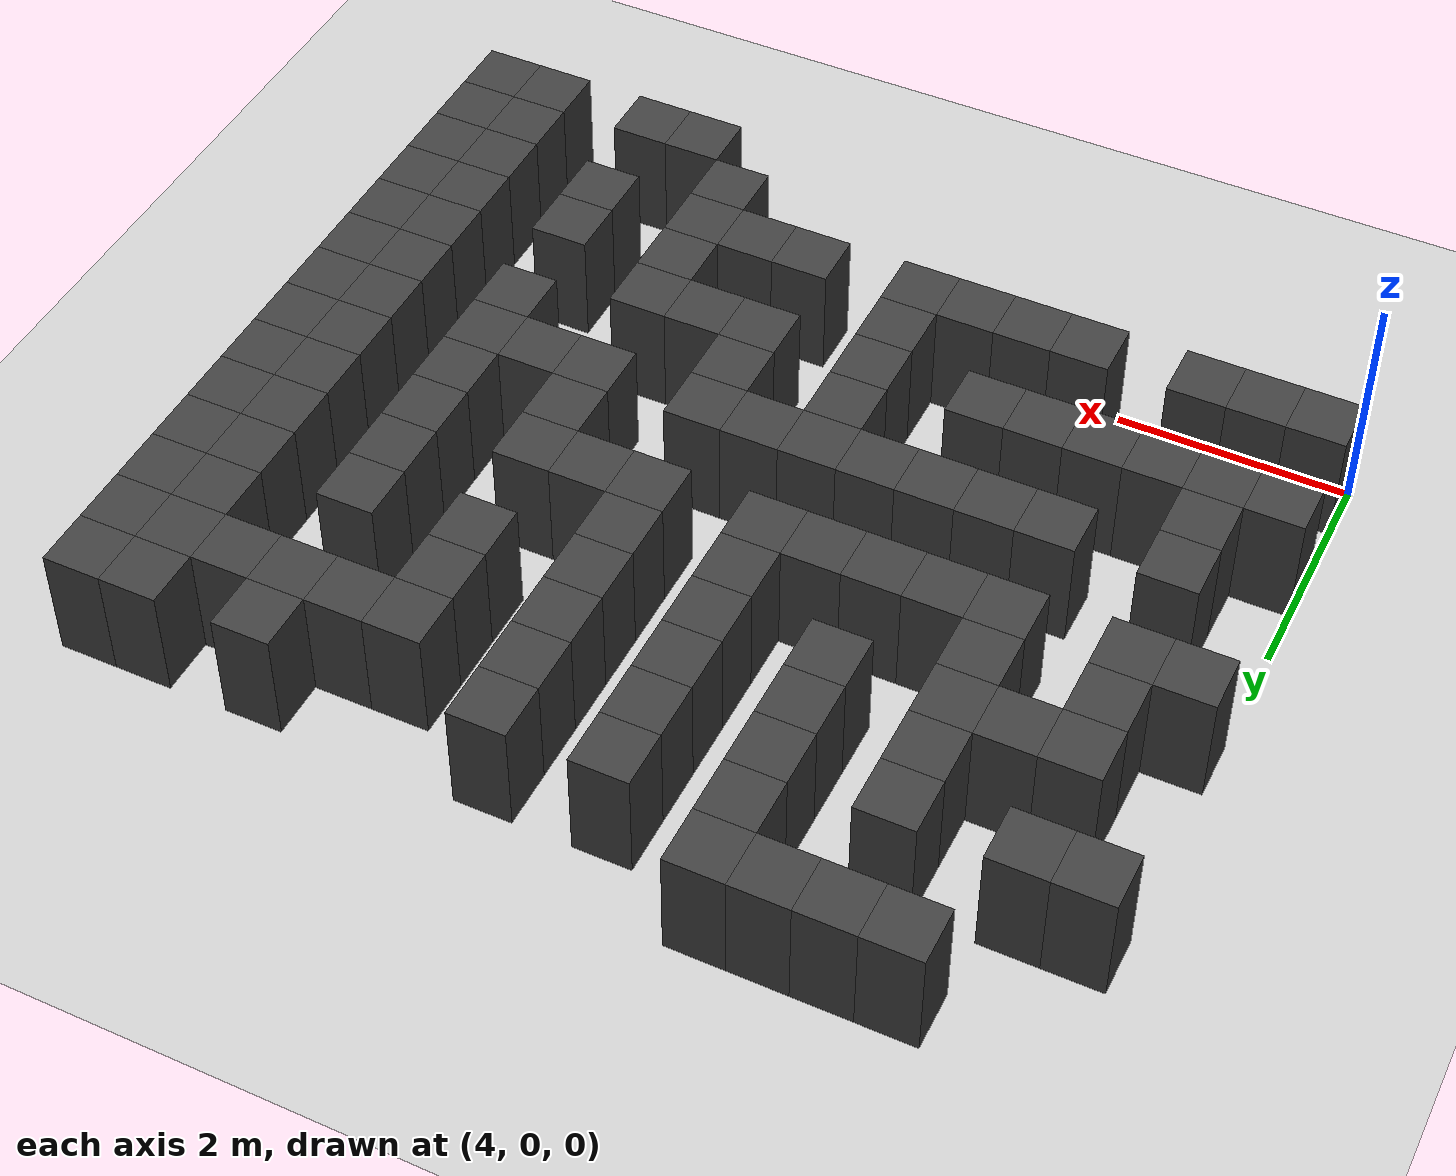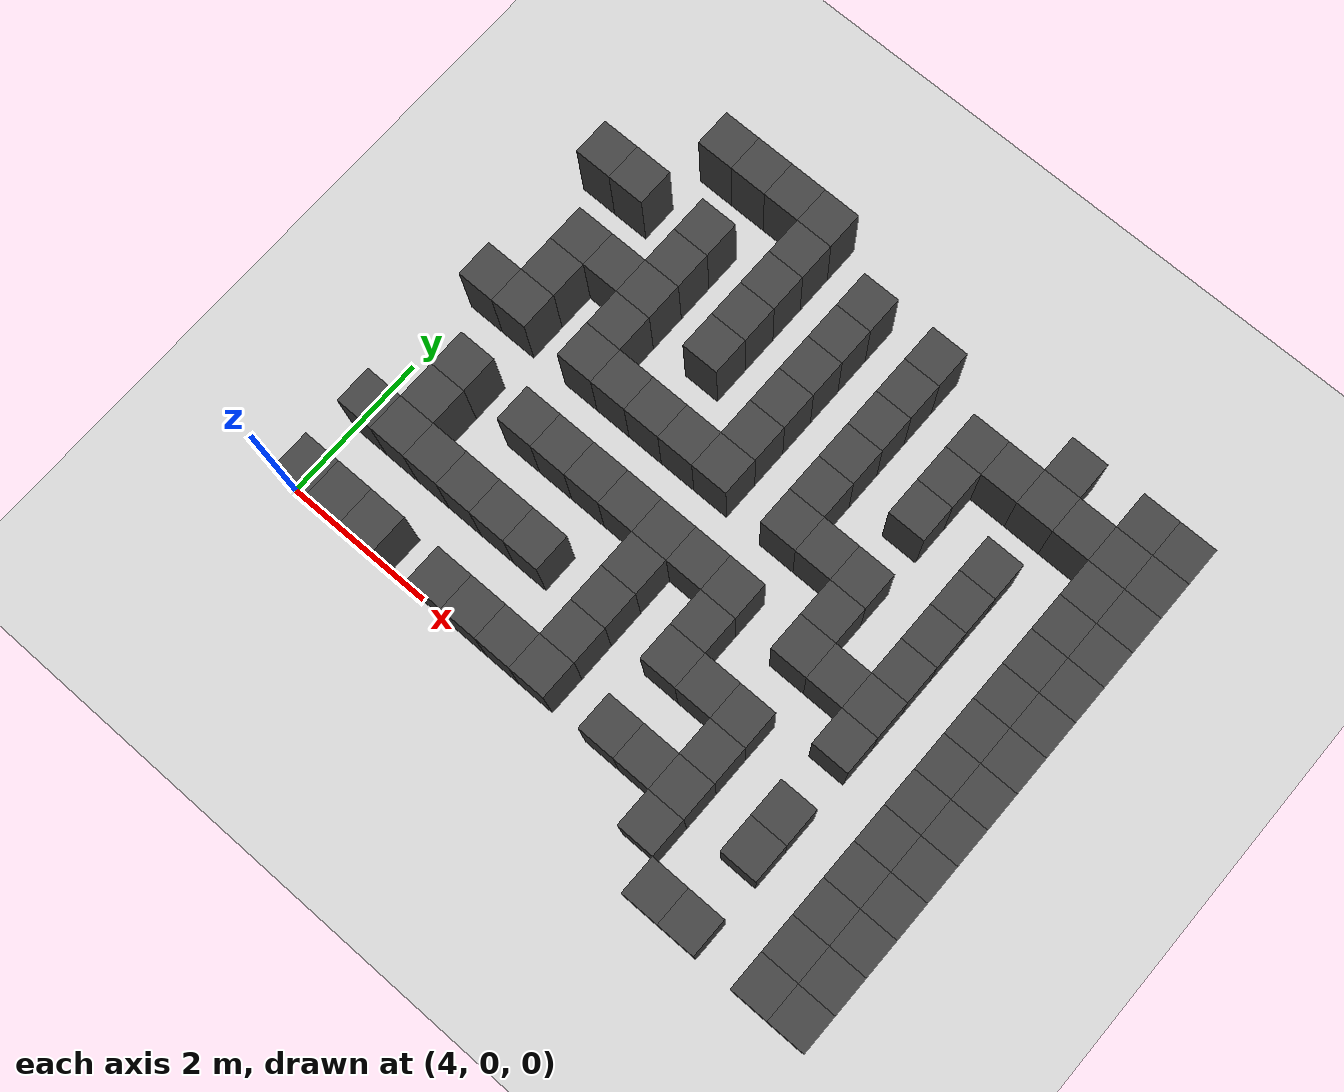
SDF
<sdf version="1.7">
 <world name="map_18553">
  <model name="ground_plane">
   <static>true</static>
   <link name="link">
    <collision name="collision">
     <geometry><plane><normal>0 0 1</normal><size>200 200</size></plane></geometry>
    </collision>
    <visual name="visual">
     <geometry><plane><normal>0 0 1</normal><size>200 200</size></plane></geometry>
     <material><ambient>0.8 0.8 0.8 1</ambient><diffuse>0.8 0.8 0.8 1</diffuse></material>
    </visual>
   </link>
  </model>
  <model name="maze_environment">
   <static>true</static>
   <link name="wall_329">
    <pose>5.250 6.250 0.500 0 0 0</pose>
    <collision name="col"><geometry><box><size>0.5 0.5 1.0</size></box></geometry></collision>
    <visual name="vis">
     <geometry><box><size>0.5 0.5 1.0</size></box></geometry>
     <material><ambient>0.15 0.15 0.15 1</ambient><diffuse>0.25 0.25 0.25 1</diffuse></material>
    </visual>
   </link>
   <link name="wall_330">
    <pose>5.750 6.250 0.500 0 0 0</pose>
    <collision name="col"><geometry><box><size>0.5 0.5 1.0</size></box></geometry></collision>
    <visual name="vis">
     <geometry><box><size>0.5 0.5 1.0</size></box></geometry>
     <material><ambient>0.15 0.15 0.15 1</ambient><diffuse>0.25 0.25 0.25 1</diffuse></material>
    </visual>
   </link>
   <link name="wall_331">
    <pose>6.250 6.250 0.500 0 0 0</pose>
    <collision name="col"><geometry><box><size>0.5 0.5 1.0</size></box></geometry></collision>
    <visual name="vis">
     <geometry><box><size>0.5 0.5 1.0</size></box></geometry>
     <material><ambient>0.15 0.15 0.15 1</ambient><diffuse>0.25 0.25 0.25 1</diffuse></material>
    </visual>
   </link>
   <link name="wall_332">
    <pose>6.750 6.250 0.500 0 0 0</pose>
    <collision name="col"><geometry><box><size>0.5 0.5 1.0</size></box></geometry></collision>
    <visual name="vis">
     <geometry><box><size>0.5 0.5 1.0</size></box></geometry>
     <material><ambient>0.15 0.15 0.15 1</ambient><diffuse>0.25 0.25 0.25 1</diffuse></material>
    </visual>
   </link>
   <link name="wall_348">
    <pose>6.750 5.750 0.500 0 0 0</pose>
    <collision name="col"><geometry><box><size>0.5 0.5 1.0</size></box></geometry></collision>
    <visual name="vis">
     <geometry><box><size>0.5 0.5 1.0</size></box></geometry>
     <material><ambient>0.15 0.15 0.15 1</ambient><diffuse>0.25 0.25 0.25 1</diffuse></material>
    </visual>
   </link>
   <link name="wall_349">
    <pose>7.750 5.750 0.500 0 0 0</pose>
    <collision name="col"><geometry><box><size>0.5 0.5 1.0</size></box></geometry></collision>
    <visual name="vis">
     <geometry><box><size>0.5 0.5 1.0</size></box></geometry>
     <material><ambient>0.15 0.15 0.15 1</ambient><diffuse>0.25 0.25 0.25 1</diffuse></material>
    </visual>
   </link>
   <link name="wall_350">
    <pose>8.750 5.750 0.500 0 0 0</pose>
    <collision name="col"><geometry><box><size>0.5 0.5 1.0</size></box></geometry></collision>
    <visual name="vis">
     <geometry><box><size>0.5 0.5 1.0</size></box></geometry>
     <material><ambient>0.15 0.15 0.15 1</ambient><diffuse>0.25 0.25 0.25 1</diffuse></material>
    </visual>
   </link>
   <link name="wall_351">
    <pose>10.750 5.750 0.500 0 0 0</pose>
    <collision name="col"><geometry><box><size>0.5 0.5 1.0</size></box></geometry></collision>
    <visual name="vis">
     <geometry><box><size>0.5 0.5 1.0</size></box></geometry>
     <material><ambient>0.15 0.15 0.15 1</ambient><diffuse>0.25 0.25 0.25 1</diffuse></material>
    </visual>
   </link>
   <link name="wall_352">
    <pose>11.750 5.750 0.500 0 0 0</pose>
    <collision name="col"><geometry><box><size>0.5 0.5 1.0</size></box></geometry></collision>
    <visual name="vis">
     <geometry><box><size>0.5 0.5 1.0</size></box></geometry>
     <material><ambient>0.15 0.15 0.15 1</ambient><diffuse>0.25 0.25 0.25 1</diffuse></material>
    </visual>
   </link>
   <link name="wall_353">
    <pose>12.250 5.750 0.500 0 0 0</pose>
    <collision name="col"><geometry><box><size>0.5 0.5 1.0</size></box></geometry></collision>
    <visual name="vis">
     <geometry><box><size>0.5 0.5 1.0</size></box></geometry>
     <material><ambient>0.15 0.15 0.15 1</ambient><diffuse>0.25 0.25 0.25 1</diffuse></material>
    </visual>
   </link>
   <link name="wall_377">
    <pose>4.250 5.250 0.500 0 0 0</pose>
    <collision name="col"><geometry><box><size>0.5 0.5 1.0</size></box></geometry></collision>
    <visual name="vis">
     <geometry><box><size>0.5 0.5 1.0</size></box></geometry>
     <material><ambient>0.15 0.15 0.15 1</ambient><diffuse>0.25 0.25 0.25 1</diffuse></material>
    </visual>
   </link>
   <link name="wall_378">
    <pose>4.750 5.250 0.500 0 0 0</pose>
    <collision name="col"><geometry><box><size>0.5 0.5 1.0</size></box></geometry></collision>
    <visual name="vis">
     <geometry><box><size>0.5 0.5 1.0</size></box></geometry>
     <material><ambient>0.15 0.15 0.15 1</ambient><diffuse>0.25 0.25 0.25 1</diffuse></material>
    </visual>
   </link>
   <link name="wall_379">
    <pose>5.750 5.250 0.500 0 0 0</pose>
    <collision name="col"><geometry><box><size>0.5 0.5 1.0</size></box></geometry></collision>
    <visual name="vis">
     <geometry><box><size>0.5 0.5 1.0</size></box></geometry>
     <material><ambient>0.15 0.15 0.15 1</ambient><diffuse>0.25 0.25 0.25 1</diffuse></material>
    </visual>
   </link>
   <link name="wall_380">
    <pose>6.750 5.250 0.500 0 0 0</pose>
    <collision name="col"><geometry><box><size>0.5 0.5 1.0</size></box></geometry></collision>
    <visual name="vis">
     <geometry><box><size>0.5 0.5 1.0</size></box></geometry>
     <material><ambient>0.15 0.15 0.15 1</ambient><diffuse>0.25 0.25 0.25 1</diffuse></material>
    </visual>
   </link>
   <link name="wall_381">
    <pose>7.750 5.250 0.500 0 0 0</pose>
    <collision name="col"><geometry><box><size>0.5 0.5 1.0</size></box></geometry></collision>
    <visual name="vis">
     <geometry><box><size>0.5 0.5 1.0</size></box></geometry>
     <material><ambient>0.15 0.15 0.15 1</ambient><diffuse>0.25 0.25 0.25 1</diffuse></material>
    </visual>
   </link>
   <link name="wall_382">
    <pose>8.750 5.250 0.500 0 0 0</pose>
    <collision name="col"><geometry><box><size>0.5 0.5 1.0</size></box></geometry></collision>
    <visual name="vis">
     <geometry><box><size>0.5 0.5 1.0</size></box></geometry>
     <material><ambient>0.15 0.15 0.15 1</ambient><diffuse>0.25 0.25 0.25 1</diffuse></material>
    </visual>
   </link>
   <link name="wall_383">
    <pose>9.750 5.250 0.500 0 0 0</pose>
    <collision name="col"><geometry><box><size>0.5 0.5 1.0</size></box></geometry></collision>
    <visual name="vis">
     <geometry><box><size>0.5 0.5 1.0</size></box></geometry>
     <material><ambient>0.15 0.15 0.15 1</ambient><diffuse>0.25 0.25 0.25 1</diffuse></material>
    </visual>
   </link>
   <link name="wall_384">
    <pose>10.250 5.250 0.500 0 0 0</pose>
    <collision name="col"><geometry><box><size>0.5 0.5 1.0</size></box></geometry></collision>
    <visual name="vis">
     <geometry><box><size>0.5 0.5 1.0</size></box></geometry>
     <material><ambient>0.15 0.15 0.15 1</ambient><diffuse>0.25 0.25 0.25 1</diffuse></material>
    </visual>
   </link>
   <link name="wall_385">
    <pose>10.750 5.250 0.500 0 0 0</pose>
    <collision name="col"><geometry><box><size>0.5 0.5 1.0</size></box></geometry></collision>
    <visual name="vis">
     <geometry><box><size>0.5 0.5 1.0</size></box></geometry>
     <material><ambient>0.15 0.15 0.15 1</ambient><diffuse>0.25 0.25 0.25 1</diffuse></material>
    </visual>
   </link>
   <link name="wall_386">
    <pose>11.250 5.250 0.500 0 0 0</pose>
    <collision name="col"><geometry><box><size>0.5 0.5 1.0</size></box></geometry></collision>
    <visual name="vis">
     <geometry><box><size>0.5 0.5 1.0</size></box></geometry>
     <material><ambient>0.15 0.15 0.15 1</ambient><diffuse>0.25 0.25 0.25 1</diffuse></material>
    </visual>
   </link>
   <link name="wall_387">
    <pose>11.750 5.250 0.500 0 0 0</pose>
    <collision name="col"><geometry><box><size>0.5 0.5 1.0</size></box></geometry></collision>
    <visual name="vis">
     <geometry><box><size>0.5 0.5 1.0</size></box></geometry>
     <material><ambient>0.15 0.15 0.15 1</ambient><diffuse>0.25 0.25 0.25 1</diffuse></material>
    </visual>
   </link>
   <link name="wall_388">
    <pose>12.250 5.250 0.500 0 0 0</pose>
    <collision name="col"><geometry><box><size>0.5 0.5 1.0</size></box></geometry></collision>
    <visual name="vis">
     <geometry><box><size>0.5 0.5 1.0</size></box></geometry>
     <material><ambient>0.15 0.15 0.15 1</ambient><diffuse>0.25 0.25 0.25 1</diffuse></material>
    </visual>
   </link>
   <link name="wall_398">
    <pose>5.750 4.750 0.500 0 0 0</pose>
    <collision name="col"><geometry><box><size>0.5 0.5 1.0</size></box></geometry></collision>
    <visual name="vis">
     <geometry><box><size>0.5 0.5 1.0</size></box></geometry>
     <material><ambient>0.15 0.15 0.15 1</ambient><diffuse>0.25 0.25 0.25 1</diffuse></material>
    </visual>
   </link>
   <link name="wall_399">
    <pose>6.750 4.750 0.500 0 0 0</pose>
    <collision name="col"><geometry><box><size>0.5 0.5 1.0</size></box></geometry></collision>
    <visual name="vis">
     <geometry><box><size>0.5 0.5 1.0</size></box></geometry>
     <material><ambient>0.15 0.15 0.15 1</ambient><diffuse>0.25 0.25 0.25 1</diffuse></material>
    </visual>
   </link>
   <link name="wall_400">
    <pose>7.750 4.750 0.500 0 0 0</pose>
    <collision name="col"><geometry><box><size>0.5 0.5 1.0</size></box></geometry></collision>
    <visual name="vis">
     <geometry><box><size>0.5 0.5 1.0</size></box></geometry>
     <material><ambient>0.15 0.15 0.15 1</ambient><diffuse>0.25 0.25 0.25 1</diffuse></material>
    </visual>
   </link>
   <link name="wall_401">
    <pose>8.750 4.750 0.500 0 0 0</pose>
    <collision name="col"><geometry><box><size>0.5 0.5 1.0</size></box></geometry></collision>
    <visual name="vis">
     <geometry><box><size>0.5 0.5 1.0</size></box></geometry>
     <material><ambient>0.15 0.15 0.15 1</ambient><diffuse>0.25 0.25 0.25 1</diffuse></material>
    </visual>
   </link>
   <link name="wall_402">
    <pose>9.750 4.750 0.500 0 0 0</pose>
    <collision name="col"><geometry><box><size>0.5 0.5 1.0</size></box></geometry></collision>
    <visual name="vis">
     <geometry><box><size>0.5 0.5 1.0</size></box></geometry>
     <material><ambient>0.15 0.15 0.15 1</ambient><diffuse>0.25 0.25 0.25 1</diffuse></material>
    </visual>
   </link>
   <link name="wall_403">
    <pose>11.750 4.750 0.500 0 0 0</pose>
    <collision name="col"><geometry><box><size>0.5 0.5 1.0</size></box></geometry></collision>
    <visual name="vis">
     <geometry><box><size>0.5 0.5 1.0</size></box></geometry>
     <material><ambient>0.15 0.15 0.15 1</ambient><diffuse>0.25 0.25 0.25 1</diffuse></material>
    </visual>
   </link>
   <link name="wall_404">
    <pose>12.250 4.750 0.500 0 0 0</pose>
    <collision name="col"><geometry><box><size>0.5 0.5 1.0</size></box></geometry></collision>
    <visual name="vis">
     <geometry><box><size>0.5 0.5 1.0</size></box></geometry>
     <material><ambient>0.15 0.15 0.15 1</ambient><diffuse>0.25 0.25 0.25 1</diffuse></material>
    </visual>
   </link>
   <link name="wall_432">
    <pose>4.750 4.250 0.500 0 0 0</pose>
    <collision name="col"><geometry><box><size>0.5 0.5 1.0</size></box></geometry></collision>
    <visual name="vis">
     <geometry><box><size>0.5 0.5 1.0</size></box></geometry>
     <material><ambient>0.15 0.15 0.15 1</ambient><diffuse>0.25 0.25 0.25 1</diffuse></material>
    </visual>
   </link>
   <link name="wall_433">
    <pose>5.250 4.250 0.500 0 0 0</pose>
    <collision name="col"><geometry><box><size>0.5 0.5 1.0</size></box></geometry></collision>
    <visual name="vis">
     <geometry><box><size>0.5 0.5 1.0</size></box></geometry>
     <material><ambient>0.15 0.15 0.15 1</ambient><diffuse>0.25 0.25 0.25 1</diffuse></material>
    </visual>
   </link>
   <link name="wall_434">
    <pose>5.750 4.250 0.500 0 0 0</pose>
    <collision name="col"><geometry><box><size>0.5 0.5 1.0</size></box></geometry></collision>
    <visual name="vis">
     <geometry><box><size>0.5 0.5 1.0</size></box></geometry>
     <material><ambient>0.15 0.15 0.15 1</ambient><diffuse>0.25 0.25 0.25 1</diffuse></material>
    </visual>
   </link>
   <link name="wall_435">
    <pose>6.750 4.250 0.500 0 0 0</pose>
    <collision name="col"><geometry><box><size>0.5 0.5 1.0</size></box></geometry></collision>
    <visual name="vis">
     <geometry><box><size>0.5 0.5 1.0</size></box></geometry>
     <material><ambient>0.15 0.15 0.15 1</ambient><diffuse>0.25 0.25 0.25 1</diffuse></material>
    </visual>
   </link>
   <link name="wall_436">
    <pose>7.750 4.250 0.500 0 0 0</pose>
    <collision name="col"><geometry><box><size>0.5 0.5 1.0</size></box></geometry></collision>
    <visual name="vis">
     <geometry><box><size>0.5 0.5 1.0</size></box></geometry>
     <material><ambient>0.15 0.15 0.15 1</ambient><diffuse>0.25 0.25 0.25 1</diffuse></material>
    </visual>
   </link>
   <link name="wall_437">
    <pose>8.750 4.250 0.500 0 0 0</pose>
    <collision name="col"><geometry><box><size>0.5 0.5 1.0</size></box></geometry></collision>
    <visual name="vis">
     <geometry><box><size>0.5 0.5 1.0</size></box></geometry>
     <material><ambient>0.15 0.15 0.15 1</ambient><diffuse>0.25 0.25 0.25 1</diffuse></material>
    </visual>
   </link>
   <link name="wall_438">
    <pose>9.750 4.250 0.500 0 0 0</pose>
    <collision name="col"><geometry><box><size>0.5 0.5 1.0</size></box></geometry></collision>
    <visual name="vis">
     <geometry><box><size>0.5 0.5 1.0</size></box></geometry>
     <material><ambient>0.15 0.15 0.15 1</ambient><diffuse>0.25 0.25 0.25 1</diffuse></material>
    </visual>
   </link>
   <link name="wall_439">
    <pose>10.750 4.250 0.500 0 0 0</pose>
    <collision name="col"><geometry><box><size>0.5 0.5 1.0</size></box></geometry></collision>
    <visual name="vis">
     <geometry><box><size>0.5 0.5 1.0</size></box></geometry>
     <material><ambient>0.15 0.15 0.15 1</ambient><diffuse>0.25 0.25 0.25 1</diffuse></material>
    </visual>
   </link>
   <link name="wall_440">
    <pose>11.750 4.250 0.500 0 0 0</pose>
    <collision name="col"><geometry><box><size>0.5 0.5 1.0</size></box></geometry></collision>
    <visual name="vis">
     <geometry><box><size>0.5 0.5 1.0</size></box></geometry>
     <material><ambient>0.15 0.15 0.15 1</ambient><diffuse>0.25 0.25 0.25 1</diffuse></material>
    </visual>
   </link>
   <link name="wall_441">
    <pose>12.250 4.250 0.500 0 0 0</pose>
    <collision name="col"><geometry><box><size>0.5 0.5 1.0</size></box></geometry></collision>
    <visual name="vis">
     <geometry><box><size>0.5 0.5 1.0</size></box></geometry>
     <material><ambient>0.15 0.15 0.15 1</ambient><diffuse>0.25 0.25 0.25 1</diffuse></material>
    </visual>
   </link>
   <link name="wall_449">
    <pose>4.750 3.750 0.500 0 0 0</pose>
    <collision name="col"><geometry><box><size>0.5 0.5 1.0</size></box></geometry></collision>
    <visual name="vis">
     <geometry><box><size>0.5 0.5 1.0</size></box></geometry>
     <material><ambient>0.15 0.15 0.15 1</ambient><diffuse>0.25 0.25 0.25 1</diffuse></material>
    </visual>
   </link>
   <link name="wall_450">
    <pose>5.750 3.750 0.500 0 0 0</pose>
    <collision name="col"><geometry><box><size>0.5 0.5 1.0</size></box></geometry></collision>
    <visual name="vis">
     <geometry><box><size>0.5 0.5 1.0</size></box></geometry>
     <material><ambient>0.15 0.15 0.15 1</ambient><diffuse>0.25 0.25 0.25 1</diffuse></material>
    </visual>
   </link>
   <link name="wall_451">
    <pose>7.750 3.750 0.500 0 0 0</pose>
    <collision name="col"><geometry><box><size>0.5 0.5 1.0</size></box></geometry></collision>
    <visual name="vis">
     <geometry><box><size>0.5 0.5 1.0</size></box></geometry>
     <material><ambient>0.15 0.15 0.15 1</ambient><diffuse>0.25 0.25 0.25 1</diffuse></material>
    </visual>
   </link>
   <link name="wall_452">
    <pose>8.750 3.750 0.500 0 0 0</pose>
    <collision name="col"><geometry><box><size>0.5 0.5 1.0</size></box></geometry></collision>
    <visual name="vis">
     <geometry><box><size>0.5 0.5 1.0</size></box></geometry>
     <material><ambient>0.15 0.15 0.15 1</ambient><diffuse>0.25 0.25 0.25 1</diffuse></material>
    </visual>
   </link>
   <link name="wall_453">
    <pose>10.750 3.750 0.500 0 0 0</pose>
    <collision name="col"><geometry><box><size>0.5 0.5 1.0</size></box></geometry></collision>
    <visual name="vis">
     <geometry><box><size>0.5 0.5 1.0</size></box></geometry>
     <material><ambient>0.15 0.15 0.15 1</ambient><diffuse>0.25 0.25 0.25 1</diffuse></material>
    </visual>
   </link>
   <link name="wall_454">
    <pose>11.750 3.750 0.500 0 0 0</pose>
    <collision name="col"><geometry><box><size>0.5 0.5 1.0</size></box></geometry></collision>
    <visual name="vis">
     <geometry><box><size>0.5 0.5 1.0</size></box></geometry>
     <material><ambient>0.15 0.15 0.15 1</ambient><diffuse>0.25 0.25 0.25 1</diffuse></material>
    </visual>
   </link>
   <link name="wall_455">
    <pose>12.250 3.750 0.500 0 0 0</pose>
    <collision name="col"><geometry><box><size>0.5 0.5 1.0</size></box></geometry></collision>
    <visual name="vis">
     <geometry><box><size>0.5 0.5 1.0</size></box></geometry>
     <material><ambient>0.15 0.15 0.15 1</ambient><diffuse>0.25 0.25 0.25 1</diffuse></material>
    </visual>
   </link>
   <link name="wall_481">
    <pose>4.250 3.250 0.500 0 0 0</pose>
    <collision name="col"><geometry><box><size>0.5 0.5 1.0</size></box></geometry></collision>
    <visual name="vis">
     <geometry><box><size>0.5 0.5 1.0</size></box></geometry>
     <material><ambient>0.15 0.15 0.15 1</ambient><diffuse>0.25 0.25 0.25 1</diffuse></material>
    </visual>
   </link>
   <link name="wall_482">
    <pose>4.750 3.250 0.500 0 0 0</pose>
    <collision name="col"><geometry><box><size>0.5 0.5 1.0</size></box></geometry></collision>
    <visual name="vis">
     <geometry><box><size>0.5 0.5 1.0</size></box></geometry>
     <material><ambient>0.15 0.15 0.15 1</ambient><diffuse>0.25 0.25 0.25 1</diffuse></material>
    </visual>
   </link>
   <link name="wall_483">
    <pose>5.750 3.250 0.500 0 0 0</pose>
    <collision name="col"><geometry><box><size>0.5 0.5 1.0</size></box></geometry></collision>
    <visual name="vis">
     <geometry><box><size>0.5 0.5 1.0</size></box></geometry>
     <material><ambient>0.15 0.15 0.15 1</ambient><diffuse>0.25 0.25 0.25 1</diffuse></material>
    </visual>
   </link>
   <link name="wall_484">
    <pose>6.250 3.250 0.500 0 0 0</pose>
    <collision name="col"><geometry><box><size>0.5 0.5 1.0</size></box></geometry></collision>
    <visual name="vis">
     <geometry><box><size>0.5 0.5 1.0</size></box></geometry>
     <material><ambient>0.15 0.15 0.15 1</ambient><diffuse>0.25 0.25 0.25 1</diffuse></material>
    </visual>
   </link>
   <link name="wall_485">
    <pose>6.750 3.250 0.500 0 0 0</pose>
    <collision name="col"><geometry><box><size>0.5 0.5 1.0</size></box></geometry></collision>
    <visual name="vis">
     <geometry><box><size>0.5 0.5 1.0</size></box></geometry>
     <material><ambient>0.15 0.15 0.15 1</ambient><diffuse>0.25 0.25 0.25 1</diffuse></material>
    </visual>
   </link>
   <link name="wall_486">
    <pose>7.250 3.250 0.500 0 0 0</pose>
    <collision name="col"><geometry><box><size>0.5 0.5 1.0</size></box></geometry></collision>
    <visual name="vis">
     <geometry><box><size>0.5 0.5 1.0</size></box></geometry>
     <material><ambient>0.15 0.15 0.15 1</ambient><diffuse>0.25 0.25 0.25 1</diffuse></material>
    </visual>
   </link>
   <link name="wall_487">
    <pose>7.750 3.250 0.500 0 0 0</pose>
    <collision name="col"><geometry><box><size>0.5 0.5 1.0</size></box></geometry></collision>
    <visual name="vis">
     <geometry><box><size>0.5 0.5 1.0</size></box></geometry>
     <material><ambient>0.15 0.15 0.15 1</ambient><diffuse>0.25 0.25 0.25 1</diffuse></material>
    </visual>
   </link>
   <link name="wall_488">
    <pose>8.750 3.250 0.500 0 0 0</pose>
    <collision name="col"><geometry><box><size>0.5 0.5 1.0</size></box></geometry></collision>
    <visual name="vis">
     <geometry><box><size>0.5 0.5 1.0</size></box></geometry>
     <material><ambient>0.15 0.15 0.15 1</ambient><diffuse>0.25 0.25 0.25 1</diffuse></material>
    </visual>
   </link>
   <link name="wall_489">
    <pose>9.250 3.250 0.500 0 0 0</pose>
    <collision name="col"><geometry><box><size>0.5 0.5 1.0</size></box></geometry></collision>
    <visual name="vis">
     <geometry><box><size>0.5 0.5 1.0</size></box></geometry>
     <material><ambient>0.15 0.15 0.15 1</ambient><diffuse>0.25 0.25 0.25 1</diffuse></material>
    </visual>
   </link>
   <link name="wall_490">
    <pose>9.750 3.250 0.500 0 0 0</pose>
    <collision name="col"><geometry><box><size>0.5 0.5 1.0</size></box></geometry></collision>
    <visual name="vis">
     <geometry><box><size>0.5 0.5 1.0</size></box></geometry>
     <material><ambient>0.15 0.15 0.15 1</ambient><diffuse>0.25 0.25 0.25 1</diffuse></material>
    </visual>
   </link>
   <link name="wall_491">
    <pose>10.750 3.250 0.500 0 0 0</pose>
    <collision name="col"><geometry><box><size>0.5 0.5 1.0</size></box></geometry></collision>
    <visual name="vis">
     <geometry><box><size>0.5 0.5 1.0</size></box></geometry>
     <material><ambient>0.15 0.15 0.15 1</ambient><diffuse>0.25 0.25 0.25 1</diffuse></material>
    </visual>
   </link>
   <link name="wall_492">
    <pose>11.750 3.250 0.500 0 0 0</pose>
    <collision name="col"><geometry><box><size>0.5 0.5 1.0</size></box></geometry></collision>
    <visual name="vis">
     <geometry><box><size>0.5 0.5 1.0</size></box></geometry>
     <material><ambient>0.15 0.15 0.15 1</ambient><diffuse>0.25 0.25 0.25 1</diffuse></material>
    </visual>
   </link>
   <link name="wall_493">
    <pose>12.250 3.250 0.500 0 0 0</pose>
    <collision name="col"><geometry><box><size>0.5 0.5 1.0</size></box></geometry></collision>
    <visual name="vis">
     <geometry><box><size>0.5 0.5 1.0</size></box></geometry>
     <material><ambient>0.15 0.15 0.15 1</ambient><diffuse>0.25 0.25 0.25 1</diffuse></material>
    </visual>
   </link>
   <link name="wall_506">
    <pose>9.750 2.750 0.500 0 0 0</pose>
    <collision name="col"><geometry><box><size>0.5 0.5 1.0</size></box></geometry></collision>
    <visual name="vis">
     <geometry><box><size>0.5 0.5 1.0</size></box></geometry>
     <material><ambient>0.15 0.15 0.15 1</ambient><diffuse>0.25 0.25 0.25 1</diffuse></material>
    </visual>
   </link>
   <link name="wall_507">
    <pose>10.750 2.750 0.500 0 0 0</pose>
    <collision name="col"><geometry><box><size>0.5 0.5 1.0</size></box></geometry></collision>
    <visual name="vis">
     <geometry><box><size>0.5 0.5 1.0</size></box></geometry>
     <material><ambient>0.15 0.15 0.15 1</ambient><diffuse>0.25 0.25 0.25 1</diffuse></material>
    </visual>
   </link>
   <link name="wall_508">
    <pose>11.750 2.750 0.500 0 0 0</pose>
    <collision name="col"><geometry><box><size>0.5 0.5 1.0</size></box></geometry></collision>
    <visual name="vis">
     <geometry><box><size>0.5 0.5 1.0</size></box></geometry>
     <material><ambient>0.15 0.15 0.15 1</ambient><diffuse>0.25 0.25 0.25 1</diffuse></material>
    </visual>
   </link>
   <link name="wall_509">
    <pose>12.250 2.750 0.500 0 0 0</pose>
    <collision name="col"><geometry><box><size>0.5 0.5 1.0</size></box></geometry></collision>
    <visual name="vis">
     <geometry><box><size>0.5 0.5 1.0</size></box></geometry>
     <material><ambient>0.15 0.15 0.15 1</ambient><diffuse>0.25 0.25 0.25 1</diffuse></material>
    </visual>
   </link>
   <link name="wall_529">
    <pose>4.750 2.250 0.500 0 0 0</pose>
    <collision name="col"><geometry><box><size>0.5 0.5 1.0</size></box></geometry></collision>
    <visual name="vis">
     <geometry><box><size>0.5 0.5 1.0</size></box></geometry>
     <material><ambient>0.15 0.15 0.15 1</ambient><diffuse>0.25 0.25 0.25 1</diffuse></material>
    </visual>
   </link>
   <link name="wall_530">
    <pose>5.750 2.250 0.500 0 0 0</pose>
    <collision name="col"><geometry><box><size>0.5 0.5 1.0</size></box></geometry></collision>
    <visual name="vis">
     <geometry><box><size>0.5 0.5 1.0</size></box></geometry>
     <material><ambient>0.15 0.15 0.15 1</ambient><diffuse>0.25 0.25 0.25 1</diffuse></material>
    </visual>
   </link>
   <link name="wall_531">
    <pose>6.250 2.250 0.500 0 0 0</pose>
    <collision name="col"><geometry><box><size>0.5 0.5 1.0</size></box></geometry></collision>
    <visual name="vis">
     <geometry><box><size>0.5 0.5 1.0</size></box></geometry>
     <material><ambient>0.15 0.15 0.15 1</ambient><diffuse>0.25 0.25 0.25 1</diffuse></material>
    </visual>
   </link>
   <link name="wall_532">
    <pose>6.750 2.250 0.500 0 0 0</pose>
    <collision name="col"><geometry><box><size>0.5 0.5 1.0</size></box></geometry></collision>
    <visual name="vis">
     <geometry><box><size>0.5 0.5 1.0</size></box></geometry>
     <material><ambient>0.15 0.15 0.15 1</ambient><diffuse>0.25 0.25 0.25 1</diffuse></material>
    </visual>
   </link>
   <link name="wall_533">
    <pose>7.250 2.250 0.500 0 0 0</pose>
    <collision name="col"><geometry><box><size>0.5 0.5 1.0</size></box></geometry></collision>
    <visual name="vis">
     <geometry><box><size>0.5 0.5 1.0</size></box></geometry>
     <material><ambient>0.15 0.15 0.15 1</ambient><diffuse>0.25 0.25 0.25 1</diffuse></material>
    </visual>
   </link>
   <link name="wall_534">
    <pose>7.750 2.250 0.500 0 0 0</pose>
    <collision name="col"><geometry><box><size>0.5 0.5 1.0</size></box></geometry></collision>
    <visual name="vis">
     <geometry><box><size>0.5 0.5 1.0</size></box></geometry>
     <material><ambient>0.15 0.15 0.15 1</ambient><diffuse>0.25 0.25 0.25 1</diffuse></material>
    </visual>
   </link>
   <link name="wall_535">
    <pose>8.250 2.250 0.500 0 0 0</pose>
    <collision name="col"><geometry><box><size>0.5 0.5 1.0</size></box></geometry></collision>
    <visual name="vis">
     <geometry><box><size>0.5 0.5 1.0</size></box></geometry>
     <material><ambient>0.15 0.15 0.15 1</ambient><diffuse>0.25 0.25 0.25 1</diffuse></material>
    </visual>
   </link>
   <link name="wall_536">
    <pose>8.750 2.250 0.500 0 0 0</pose>
    <collision name="col"><geometry><box><size>0.5 0.5 1.0</size></box></geometry></collision>
    <visual name="vis">
     <geometry><box><size>0.5 0.5 1.0</size></box></geometry>
     <material><ambient>0.15 0.15 0.15 1</ambient><diffuse>0.25 0.25 0.25 1</diffuse></material>
    </visual>
   </link>
   <link name="wall_537">
    <pose>9.750 2.250 0.500 0 0 0</pose>
    <collision name="col"><geometry><box><size>0.5 0.5 1.0</size></box></geometry></collision>
    <visual name="vis">
     <geometry><box><size>0.5 0.5 1.0</size></box></geometry>
     <material><ambient>0.15 0.15 0.15 1</ambient><diffuse>0.25 0.25 0.25 1</diffuse></material>
    </visual>
   </link>
   <link name="wall_538">
    <pose>10.250 2.250 0.500 0 0 0</pose>
    <collision name="col"><geometry><box><size>0.5 0.5 1.0</size></box></geometry></collision>
    <visual name="vis">
     <geometry><box><size>0.5 0.5 1.0</size></box></geometry>
     <material><ambient>0.15 0.15 0.15 1</ambient><diffuse>0.25 0.25 0.25 1</diffuse></material>
    </visual>
   </link>
   <link name="wall_539">
    <pose>10.750 2.250 0.500 0 0 0</pose>
    <collision name="col"><geometry><box><size>0.5 0.5 1.0</size></box></geometry></collision>
    <visual name="vis">
     <geometry><box><size>0.5 0.5 1.0</size></box></geometry>
     <material><ambient>0.15 0.15 0.15 1</ambient><diffuse>0.25 0.25 0.25 1</diffuse></material>
    </visual>
   </link>
   <link name="wall_540">
    <pose>11.750 2.250 0.500 0 0 0</pose>
    <collision name="col"><geometry><box><size>0.5 0.5 1.0</size></box></geometry></collision>
    <visual name="vis">
     <geometry><box><size>0.5 0.5 1.0</size></box></geometry>
     <material><ambient>0.15 0.15 0.15 1</ambient><diffuse>0.25 0.25 0.25 1</diffuse></material>
    </visual>
   </link>
   <link name="wall_541">
    <pose>12.250 2.250 0.500 0 0 0</pose>
    <collision name="col"><geometry><box><size>0.5 0.5 1.0</size></box></geometry></collision>
    <visual name="vis">
     <geometry><box><size>0.5 0.5 1.0</size></box></geometry>
     <material><ambient>0.15 0.15 0.15 1</ambient><diffuse>0.25 0.25 0.25 1</diffuse></material>
    </visual>
   </link>
   <link name="wall_551">
    <pose>4.750 1.750 0.500 0 0 0</pose>
    <collision name="col"><geometry><box><size>0.5 0.5 1.0</size></box></geometry></collision>
    <visual name="vis">
     <geometry><box><size>0.5 0.5 1.0</size></box></geometry>
     <material><ambient>0.15 0.15 0.15 1</ambient><diffuse>0.25 0.25 0.25 1</diffuse></material>
    </visual>
   </link>
   <link name="wall_552">
    <pose>7.750 1.750 0.500 0 0 0</pose>
    <collision name="col"><geometry><box><size>0.5 0.5 1.0</size></box></geometry></collision>
    <visual name="vis">
     <geometry><box><size>0.5 0.5 1.0</size></box></geometry>
     <material><ambient>0.15 0.15 0.15 1</ambient><diffuse>0.25 0.25 0.25 1</diffuse></material>
    </visual>
   </link>
   <link name="wall_553">
    <pose>8.750 1.750 0.500 0 0 0</pose>
    <collision name="col"><geometry><box><size>0.5 0.5 1.0</size></box></geometry></collision>
    <visual name="vis">
     <geometry><box><size>0.5 0.5 1.0</size></box></geometry>
     <material><ambient>0.15 0.15 0.15 1</ambient><diffuse>0.25 0.25 0.25 1</diffuse></material>
    </visual>
   </link>
   <link name="wall_554">
    <pose>10.750 1.750 0.500 0 0 0</pose>
    <collision name="col"><geometry><box><size>0.5 0.5 1.0</size></box></geometry></collision>
    <visual name="vis">
     <geometry><box><size>0.5 0.5 1.0</size></box></geometry>
     <material><ambient>0.15 0.15 0.15 1</ambient><diffuse>0.25 0.25 0.25 1</diffuse></material>
    </visual>
   </link>
   <link name="wall_555">
    <pose>11.750 1.750 0.500 0 0 0</pose>
    <collision name="col"><geometry><box><size>0.5 0.5 1.0</size></box></geometry></collision>
    <visual name="vis">
     <geometry><box><size>0.5 0.5 1.0</size></box></geometry>
     <material><ambient>0.15 0.15 0.15 1</ambient><diffuse>0.25 0.25 0.25 1</diffuse></material>
    </visual>
   </link>
   <link name="wall_556">
    <pose>12.250 1.750 0.500 0 0 0</pose>
    <collision name="col"><geometry><box><size>0.5 0.5 1.0</size></box></geometry></collision>
    <visual name="vis">
     <geometry><box><size>0.5 0.5 1.0</size></box></geometry>
     <material><ambient>0.15 0.15 0.15 1</ambient><diffuse>0.25 0.25 0.25 1</diffuse></material>
    </visual>
   </link>
   <link name="wall_579">
    <pose>4.250 1.250 0.500 0 0 0</pose>
    <collision name="col"><geometry><box><size>0.5 0.5 1.0</size></box></geometry></collision>
    <visual name="vis">
     <geometry><box><size>0.5 0.5 1.0</size></box></geometry>
     <material><ambient>0.15 0.15 0.15 1</ambient><diffuse>0.25 0.25 0.25 1</diffuse></material>
    </visual>
   </link>
   <link name="wall_580">
    <pose>4.750 1.250 0.500 0 0 0</pose>
    <collision name="col"><geometry><box><size>0.5 0.5 1.0</size></box></geometry></collision>
    <visual name="vis">
     <geometry><box><size>0.5 0.5 1.0</size></box></geometry>
     <material><ambient>0.15 0.15 0.15 1</ambient><diffuse>0.25 0.25 0.25 1</diffuse></material>
    </visual>
   </link>
   <link name="wall_581">
    <pose>5.250 1.250 0.500 0 0 0</pose>
    <collision name="col"><geometry><box><size>0.5 0.5 1.0</size></box></geometry></collision>
    <visual name="vis">
     <geometry><box><size>0.5 0.5 1.0</size></box></geometry>
     <material><ambient>0.15 0.15 0.15 1</ambient><diffuse>0.25 0.25 0.25 1</diffuse></material>
    </visual>
   </link>
   <link name="wall_582">
    <pose>5.750 1.250 0.500 0 0 0</pose>
    <collision name="col"><geometry><box><size>0.5 0.5 1.0</size></box></geometry></collision>
    <visual name="vis">
     <geometry><box><size>0.5 0.5 1.0</size></box></geometry>
     <material><ambient>0.15 0.15 0.15 1</ambient><diffuse>0.25 0.25 0.25 1</diffuse></material>
    </visual>
   </link>
   <link name="wall_583">
    <pose>6.250 1.250 0.500 0 0 0</pose>
    <collision name="col"><geometry><box><size>0.5 0.5 1.0</size></box></geometry></collision>
    <visual name="vis">
     <geometry><box><size>0.5 0.5 1.0</size></box></geometry>
     <material><ambient>0.15 0.15 0.15 1</ambient><diffuse>0.25 0.25 0.25 1</diffuse></material>
    </visual>
   </link>
   <link name="wall_584">
    <pose>6.750 1.250 0.500 0 0 0</pose>
    <collision name="col"><geometry><box><size>0.5 0.5 1.0</size></box></geometry></collision>
    <visual name="vis">
     <geometry><box><size>0.5 0.5 1.0</size></box></geometry>
     <material><ambient>0.15 0.15 0.15 1</ambient><diffuse>0.25 0.25 0.25 1</diffuse></material>
    </visual>
   </link>
   <link name="wall_585">
    <pose>7.750 1.250 0.500 0 0 0</pose>
    <collision name="col"><geometry><box><size>0.5 0.5 1.0</size></box></geometry></collision>
    <visual name="vis">
     <geometry><box><size>0.5 0.5 1.0</size></box></geometry>
     <material><ambient>0.15 0.15 0.15 1</ambient><diffuse>0.25 0.25 0.25 1</diffuse></material>
    </visual>
   </link>
   <link name="wall_586">
    <pose>8.750 1.250 0.500 0 0 0</pose>
    <collision name="col"><geometry><box><size>0.5 0.5 1.0</size></box></geometry></collision>
    <visual name="vis">
     <geometry><box><size>0.5 0.5 1.0</size></box></geometry>
     <material><ambient>0.15 0.15 0.15 1</ambient><diffuse>0.25 0.25 0.25 1</diffuse></material>
    </visual>
   </link>
   <link name="wall_587">
    <pose>9.250 1.250 0.500 0 0 0</pose>
    <collision name="col"><geometry><box><size>0.5 0.5 1.0</size></box></geometry></collision>
    <visual name="vis">
     <geometry><box><size>0.5 0.5 1.0</size></box></geometry>
     <material><ambient>0.15 0.15 0.15 1</ambient><diffuse>0.25 0.25 0.25 1</diffuse></material>
    </visual>
   </link>
   <link name="wall_588">
    <pose>9.750 1.250 0.500 0 0 0</pose>
    <collision name="col"><geometry><box><size>0.5 0.5 1.0</size></box></geometry></collision>
    <visual name="vis">
     <geometry><box><size>0.5 0.5 1.0</size></box></geometry>
     <material><ambient>0.15 0.15 0.15 1</ambient><diffuse>0.25 0.25 0.25 1</diffuse></material>
    </visual>
   </link>
   <link name="wall_589">
    <pose>11.750 1.250 0.500 0 0 0</pose>
    <collision name="col"><geometry><box><size>0.5 0.5 1.0</size></box></geometry></collision>
    <visual name="vis">
     <geometry><box><size>0.5 0.5 1.0</size></box></geometry>
     <material><ambient>0.15 0.15 0.15 1</ambient><diffuse>0.25 0.25 0.25 1</diffuse></material>
    </visual>
   </link>
   <link name="wall_590">
    <pose>12.250 1.250 0.500 0 0 0</pose>
    <collision name="col"><geometry><box><size>0.5 0.5 1.0</size></box></geometry></collision>
    <visual name="vis">
     <geometry><box><size>0.5 0.5 1.0</size></box></geometry>
     <material><ambient>0.15 0.15 0.15 1</ambient><diffuse>0.25 0.25 0.25 1</diffuse></material>
    </visual>
   </link>
   <link name="wall_601">
    <pose>7.750 0.750 0.500 0 0 0</pose>
    <collision name="col"><geometry><box><size>0.5 0.5 1.0</size></box></geometry></collision>
    <visual name="vis">
     <geometry><box><size>0.5 0.5 1.0</size></box></geometry>
     <material><ambient>0.15 0.15 0.15 1</ambient><diffuse>0.25 0.25 0.25 1</diffuse></material>
    </visual>
   </link>
   <link name="wall_602">
    <pose>9.750 0.750 0.500 0 0 0</pose>
    <collision name="col"><geometry><box><size>0.5 0.5 1.0</size></box></geometry></collision>
    <visual name="vis">
     <geometry><box><size>0.5 0.5 1.0</size></box></geometry>
     <material><ambient>0.15 0.15 0.15 1</ambient><diffuse>0.25 0.25 0.25 1</diffuse></material>
    </visual>
   </link>
   <link name="wall_603">
    <pose>10.750 0.750 0.500 0 0 0</pose>
    <collision name="col"><geometry><box><size>0.5 0.5 1.0</size></box></geometry></collision>
    <visual name="vis">
     <geometry><box><size>0.5 0.5 1.0</size></box></geometry>
     <material><ambient>0.15 0.15 0.15 1</ambient><diffuse>0.25 0.25 0.25 1</diffuse></material>
    </visual>
   </link>
   <link name="wall_604">
    <pose>11.750 0.750 0.500 0 0 0</pose>
    <collision name="col"><geometry><box><size>0.5 0.5 1.0</size></box></geometry></collision>
    <visual name="vis">
     <geometry><box><size>0.5 0.5 1.0</size></box></geometry>
     <material><ambient>0.15 0.15 0.15 1</ambient><diffuse>0.25 0.25 0.25 1</diffuse></material>
    </visual>
   </link>
   <link name="wall_605">
    <pose>12.250 0.750 0.500 0 0 0</pose>
    <collision name="col"><geometry><box><size>0.5 0.5 1.0</size></box></geometry></collision>
    <visual name="vis">
     <geometry><box><size>0.5 0.5 1.0</size></box></geometry>
     <material><ambient>0.15 0.15 0.15 1</ambient><diffuse>0.25 0.25 0.25 1</diffuse></material>
    </visual>
   </link>
   <link name="wall_630">
    <pose>4.250 0.250 0.500 0 0 0</pose>
    <collision name="col"><geometry><box><size>0.5 0.5 1.0</size></box></geometry></collision>
    <visual name="vis">
     <geometry><box><size>0.5 0.5 1.0</size></box></geometry>
     <material><ambient>0.15 0.15 0.15 1</ambient><diffuse>0.25 0.25 0.25 1</diffuse></material>
    </visual>
   </link>
   <link name="wall_631">
    <pose>4.750 0.250 0.500 0 0 0</pose>
    <collision name="col"><geometry><box><size>0.5 0.5 1.0</size></box></geometry></collision>
    <visual name="vis">
     <geometry><box><size>0.5 0.5 1.0</size></box></geometry>
     <material><ambient>0.15 0.15 0.15 1</ambient><diffuse>0.25 0.25 0.25 1</diffuse></material>
    </visual>
   </link>
   <link name="wall_632">
    <pose>5.250 0.250 0.500 0 0 0</pose>
    <collision name="col"><geometry><box><size>0.5 0.5 1.0</size></box></geometry></collision>
    <visual name="vis">
     <geometry><box><size>0.5 0.5 1.0</size></box></geometry>
     <material><ambient>0.15 0.15 0.15 1</ambient><diffuse>0.25 0.25 0.25 1</diffuse></material>
    </visual>
   </link>
   <link name="wall_633">
    <pose>6.250 0.250 0.500 0 0 0</pose>
    <collision name="col"><geometry><box><size>0.5 0.5 1.0</size></box></geometry></collision>
    <visual name="vis">
     <geometry><box><size>0.5 0.5 1.0</size></box></geometry>
     <material><ambient>0.15 0.15 0.15 1</ambient><diffuse>0.25 0.25 0.25 1</diffuse></material>
    </visual>
   </link>
   <link name="wall_634">
    <pose>6.750 0.250 0.500 0 0 0</pose>
    <collision name="col"><geometry><box><size>0.5 0.5 1.0</size></box></geometry></collision>
    <visual name="vis">
     <geometry><box><size>0.5 0.5 1.0</size></box></geometry>
     <material><ambient>0.15 0.15 0.15 1</ambient><diffuse>0.25 0.25 0.25 1</diffuse></material>
    </visual>
   </link>
   <link name="wall_635">
    <pose>7.250 0.250 0.500 0 0 0</pose>
    <collision name="col"><geometry><box><size>0.5 0.5 1.0</size></box></geometry></collision>
    <visual name="vis">
     <geometry><box><size>0.5 0.5 1.0</size></box></geometry>
     <material><ambient>0.15 0.15 0.15 1</ambient><diffuse>0.25 0.25 0.25 1</diffuse></material>
    </visual>
   </link>
   <link name="wall_636">
    <pose>7.750 0.250 0.500 0 0 0</pose>
    <collision name="col"><geometry><box><size>0.5 0.5 1.0</size></box></geometry></collision>
    <visual name="vis">
     <geometry><box><size>0.5 0.5 1.0</size></box></geometry>
     <material><ambient>0.15 0.15 0.15 1</ambient><diffuse>0.25 0.25 0.25 1</diffuse></material>
    </visual>
   </link>
   <link name="wall_637">
    <pose>8.750 0.250 0.500 0 0 0</pose>
    <collision name="col"><geometry><box><size>0.5 0.5 1.0</size></box></geometry></collision>
    <visual name="vis">
     <geometry><box><size>0.5 0.5 1.0</size></box></geometry>
     <material><ambient>0.15 0.15 0.15 1</ambient><diffuse>0.25 0.25 0.25 1</diffuse></material>
    </visual>
   </link>
   <link name="wall_638">
    <pose>9.250 0.250 0.500 0 0 0</pose>
    <collision name="col"><geometry><box><size>0.5 0.5 1.0</size></box></geometry></collision>
    <visual name="vis">
     <geometry><box><size>0.5 0.5 1.0</size></box></geometry>
     <material><ambient>0.15 0.15 0.15 1</ambient><diffuse>0.25 0.25 0.25 1</diffuse></material>
    </visual>
   </link>
   <link name="wall_639">
    <pose>9.750 0.250 0.500 0 0 0</pose>
    <collision name="col"><geometry><box><size>0.5 0.5 1.0</size></box></geometry></collision>
    <visual name="vis">
     <geometry><box><size>0.5 0.5 1.0</size></box></geometry>
     <material><ambient>0.15 0.15 0.15 1</ambient><diffuse>0.25 0.25 0.25 1</diffuse></material>
    </visual>
   </link>
   <link name="wall_640">
    <pose>10.750 0.250 0.500 0 0 0</pose>
    <collision name="col"><geometry><box><size>0.5 0.5 1.0</size></box></geometry></collision>
    <visual name="vis">
     <geometry><box><size>0.5 0.5 1.0</size></box></geometry>
     <material><ambient>0.15 0.15 0.15 1</ambient><diffuse>0.25 0.25 0.25 1</diffuse></material>
    </visual>
   </link>
   <link name="wall_641">
    <pose>11.750 0.250 0.500 0 0 0</pose>
    <collision name="col"><geometry><box><size>0.5 0.5 1.0</size></box></geometry></collision>
    <visual name="vis">
     <geometry><box><size>0.5 0.5 1.0</size></box></geometry>
     <material><ambient>0.15 0.15 0.15 1</ambient><diffuse>0.25 0.25 0.25 1</diffuse></material>
    </visual>
   </link>
   <link name="wall_642">
    <pose>12.250 0.250 0.500 0 0 0</pose>
    <collision name="col"><geometry><box><size>0.5 0.5 1.0</size></box></geometry></collision>
    <visual name="vis">
     <geometry><box><size>0.5 0.5 1.0</size></box></geometry>
     <material><ambient>0.15 0.15 0.15 1</ambient><diffuse>0.25 0.25 0.25 1</diffuse></material>
    </visual>
   </link>
   <link name="wall_651">
    <pose>9.750 -0.250 0.500 0 0 0</pose>
    <collision name="col"><geometry><box><size>0.5 0.5 1.0</size></box></geometry></collision>
    <visual name="vis">
     <geometry><box><size>0.5 0.5 1.0</size></box></geometry>
     <material><ambient>0.15 0.15 0.15 1</ambient><diffuse>0.25 0.25 0.25 1</diffuse></material>
    </visual>
   </link>
   <link name="wall_652">
    <pose>11.750 -0.250 0.500 0 0 0</pose>
    <collision name="col"><geometry><box><size>0.5 0.5 1.0</size></box></geometry></collision>
    <visual name="vis">
     <geometry><box><size>0.5 0.5 1.0</size></box></geometry>
     <material><ambient>0.15 0.15 0.15 1</ambient><diffuse>0.25 0.25 0.25 1</diffuse></material>
    </visual>
   </link>
   <link name="wall_653">
    <pose>12.250 -0.250 0.500 0 0 0</pose>
    <collision name="col"><geometry><box><size>0.5 0.5 1.0</size></box></geometry></collision>
    <visual name="vis">
     <geometry><box><size>0.5 0.5 1.0</size></box></geometry>
     <material><ambient>0.15 0.15 0.15 1</ambient><diffuse>0.25 0.25 0.25 1</diffuse></material>
    </visual>
   </link>
   <link name="wall_687">
    <pose>10.250 -0.750 0.500 0 0 0</pose>
    <collision name="col"><geometry><box><size>0.5 0.5 1.0</size></box></geometry></collision>
    <visual name="vis">
     <geometry><box><size>0.5 0.5 1.0</size></box></geometry>
     <material><ambient>0.15 0.15 0.15 1</ambient><diffuse>0.25 0.25 0.25 1</diffuse></material>
    </visual>
   </link>
   <link name="wall_688">
    <pose>10.750 -0.750 0.500 0 0 0</pose>
    <collision name="col"><geometry><box><size>0.5 0.5 1.0</size></box></geometry></collision>
    <visual name="vis">
     <geometry><box><size>0.5 0.5 1.0</size></box></geometry>
     <material><ambient>0.15 0.15 0.15 1</ambient><diffuse>0.25 0.25 0.25 1</diffuse></material>
    </visual>
   </link>
   <link name="wall_689">
    <pose>11.750 -0.750 0.500 0 0 0</pose>
    <collision name="col"><geometry><box><size>0.5 0.5 1.0</size></box></geometry></collision>
    <visual name="vis">
     <geometry><box><size>0.5 0.5 1.0</size></box></geometry>
     <material><ambient>0.15 0.15 0.15 1</ambient><diffuse>0.25 0.25 0.25 1</diffuse></material>
    </visual>
   </link>
   <link name="wall_690">
    <pose>12.250 -0.750 0.500 0 0 0</pose>
    <collision name="col"><geometry><box><size>0.5 0.5 1.0</size></box></geometry></collision>
    <visual name="vis">
     <geometry><box><size>0.5 0.5 1.0</size></box></geometry>
     <material><ambient>0.15 0.15 0.15 1</ambient><diffuse>0.25 0.25 0.25 1</diffuse></material>
    </visual>
   </link>
  </model>
 </world>
</sdf>
